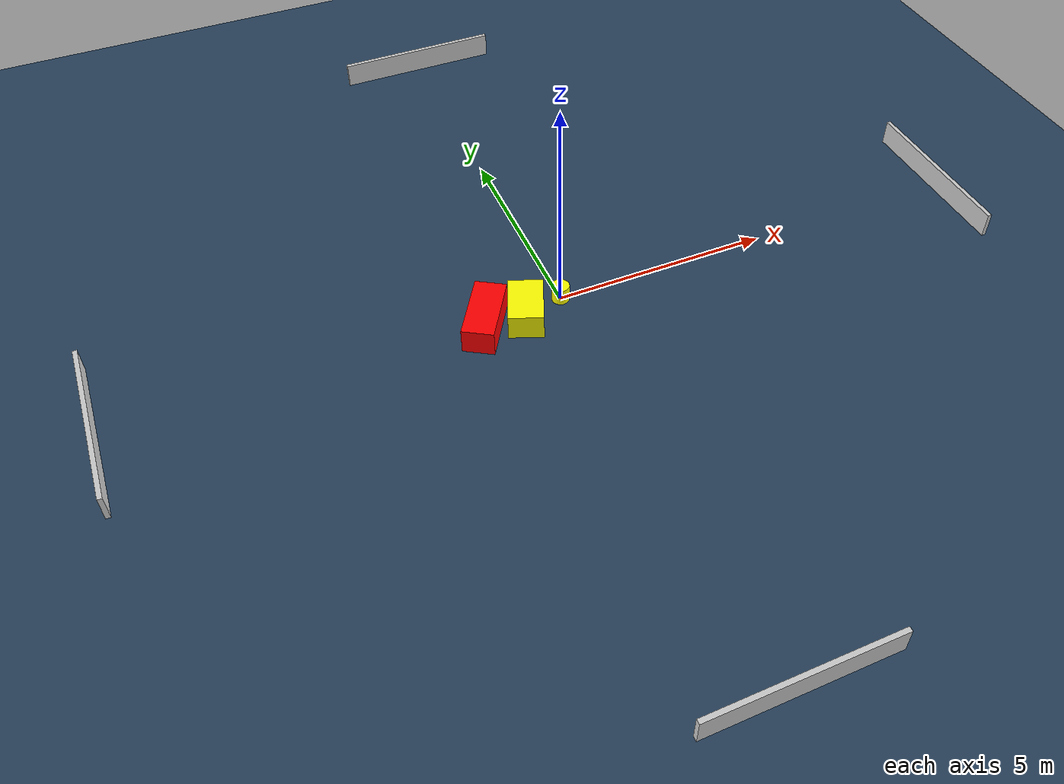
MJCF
<?xml version="1.0" ?>
<mujoco model="generated_environment">
  <option timestep="0.01" integrator="RK4" cone="elliptic"/>
  <default>
    <geom density="1"/>
  </default>
  <asset>
    <texture builtin="gradient" height="3072" name="skybox" rgb1="0.3 0.5 0.7" rgb2="0 0 0" type="skybox" width="512"/>
    <texture builtin="checker" height="300" name="groundplane" rgb1="0.2 0.3 0.4" rgb2="0.1 0.2 0.3" type="2d" width="300"/>
    <material name="groundplane" reflectance="0.2" texrepeat="5 5" texture="groundplane"/>
  </asset>
  <worldbody>
    <light dir="0 0 -1" directional="true" pos="0 0 1.5"/>
    <geom condim="3" friction="0.5 0.005 0.001" material="groundplane" name="floor" pos="0 0 0" size="0 0 0.05" type="plane"/>
    <body name="walls">
      <geom name="wall_1" condim="4" pos="-10.0 0.0 0.3" rgba="0.800000011920929 0.800000011920929 0.800000011920929 1.0" size="0.05 2.0 0.3" type="box"/>
      <geom name="wall_2" condim="4" pos="10.0 0.0 0.3" rgba="0.800000011920929 0.800000011920929 0.800000011920929 1.0" size="0.05 2.0 0.3" type="box"/>
      <geom name="wall_3" condim="4" pos="0.0 -10.0 0.3" rgba="0.800000011920929 0.800000011920929 0.800000011920929 1.0" size="2.0 0.05 0.3" type="box"/>
      <geom name="wall_4" condim="4" pos="0.0 10.0 0.3" rgba="0.800000011920929 0.800000011920929 0.800000011920929 1.0" size="2.0 0.05 0.3" type="box"/>
    </body>
    <body name="robot">
      <joint name="joint_x" type="slide" pos="0 0 0" axis="1 0 0"/>
      <joint name="joint_y" type="slide" pos="0 0 0" axis="0 1 0"/>
      <geom name="robot" type="cylinder" pos="0.0 0.0 0.2" size="0.2 0.2 0.0" mass="5.0" friction="1.0 0.005 0.0001" condim="4" rgba="1.0 1.0 0.0 1.0"/>
    </body>
    <body name="obstacle_1_movable">
      <geom name="obstacle_1_movable" condim="4" pos="-0.9334838222986 -0.2672032979228955 0.3" euler="0 0 158.5879500269534" friction="0.0 0.005 0.001" rgba="1.0 1.0 0.0 1.0" size="0.3871656519690876 0.5820257370507196 0.3" type="box" mass="0.1"/>
      <joint type="free"/>
    </body>
    <body name="obstacle_2_static">
      <geom name="obstacle_2_static" condim="4" pos="-1.8425592394286332 -0.1635857971157611 0.3" euler="0 0 58.46626061566178" friction="0.0 0.005 0.001" rgba="1.0 0.0 0.0 1.0" size="0.7690451629631203 0.3552425346085999 0.3" type="box"/>
    </body>
  </worldbody>
  <actuator>
    <motor name="actuator_x" joint="joint_x" gear="1" ctrlrange="-1 1"/>
    <motor name="actuator_y" joint="joint_y" gear="1" ctrlrange="-1 1"/>
  </actuator>
</mujoco>
